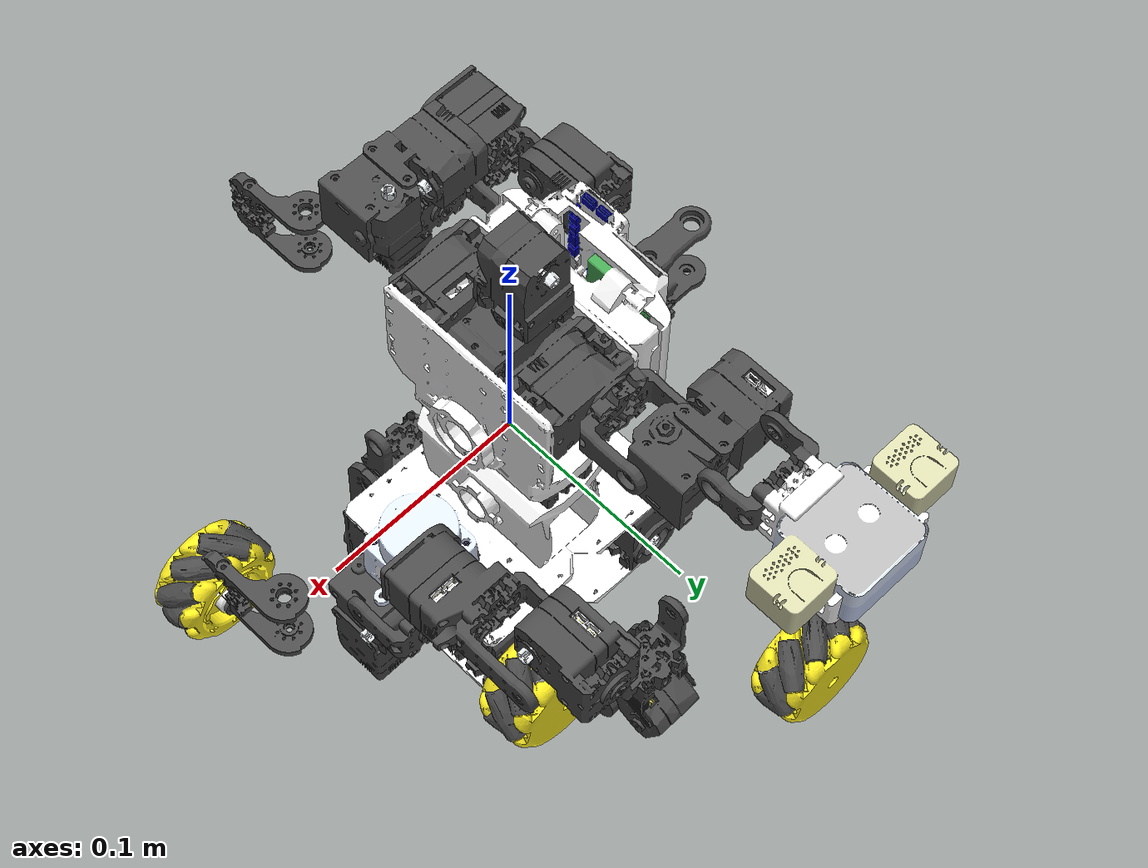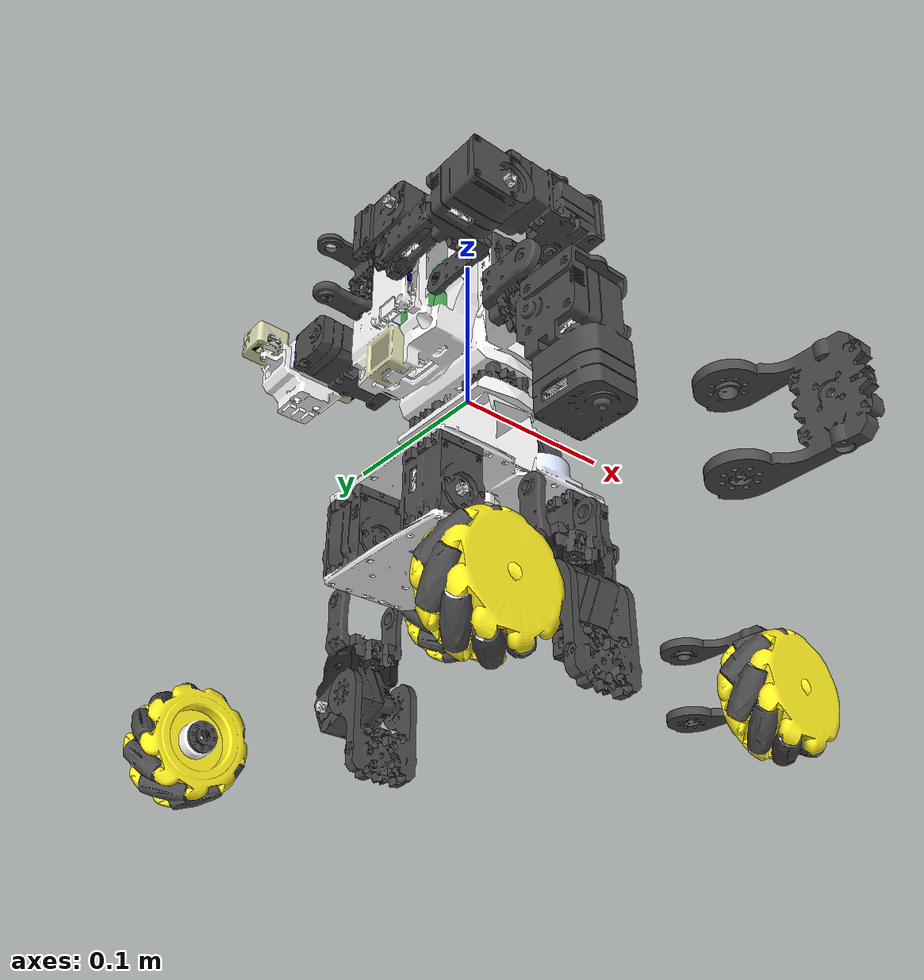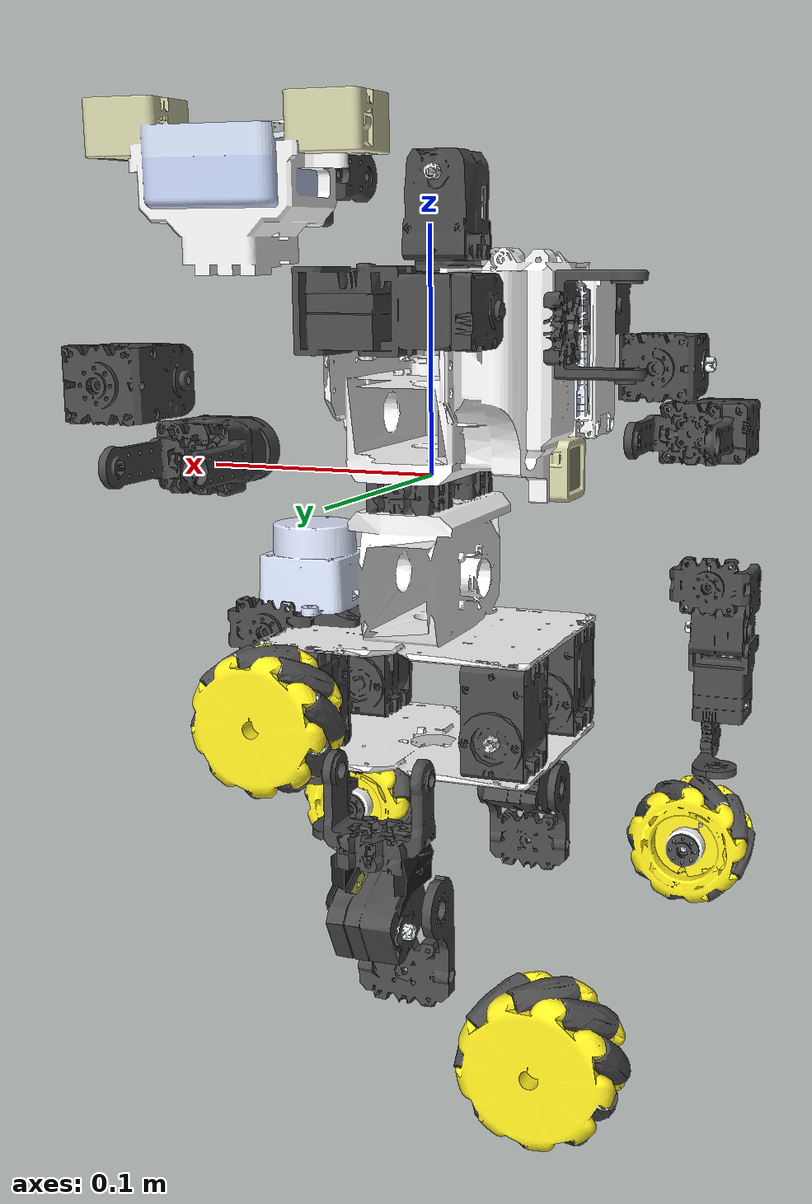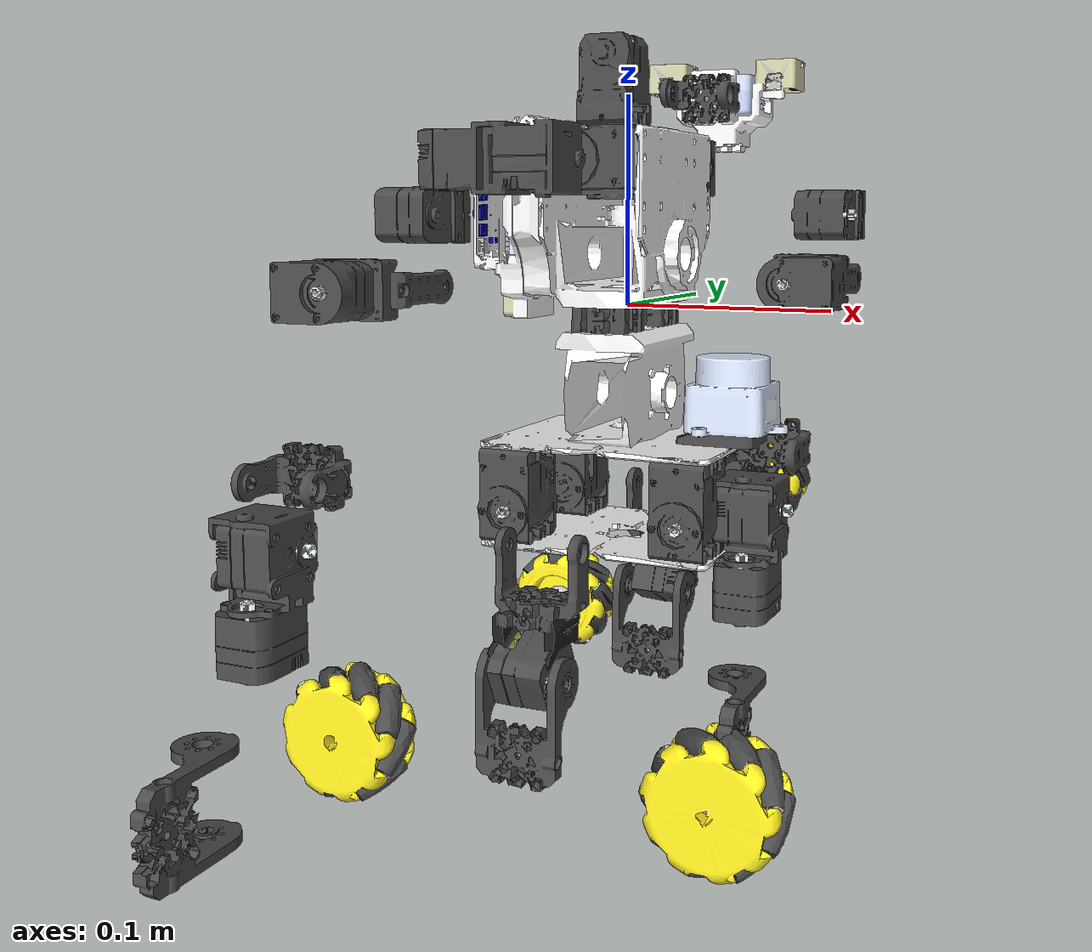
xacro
<?xml version='1.0' encoding='UTF-8'?>
<robot xmlns:xacro="http://www.ros.org/wiki/xacro" xmlns:drake="http://drake.mit.edu" name="jedy">
  <!-- true = keep the gz_ros2_control block below (upstream behaviour).
       false = emit kinematics only, for a caller that adds its own. -->
  <xacro:arg name="gz_control" default="true"/>
  <!-- Head camera in Gazebo: wide | d405 (see the rgbd_camera sensor). -->
  <xacro:arg name="camera_model" default="wide"/>
  <xacro:arg name="camera_rate" default="5"/>

  <link name="base_link"/>
  <link name="real_base_link">
    <inertial>
      <origin xyz="0.00124 1.38911e-10 0.02081" rpy="0.0 -0.0 0.0"/>
      <mass value="0.671312"/>
      <inertia ixx="0.001849" ixy="-8.30713e-06" ixz="-1.71308e-06" iyy="0.002122" iyz="1.45167e-06" izz="0.003179"/>
    </inertial>
    <visual>
      <geometry>
        <mesh filename="package://jedy_description/meshes/cad/base_link.dae"/>
      </geometry>
      <origin xyz="0 -0.127 -4.66497046e-07" rpy="-0.785398163 -1.57079113 -0.785398163"/>
    </visual>
    <collision>
      <geometry>
        <mesh filename="package://jedy_description/meshes/gz/base_link.stl"/>
      </geometry>
      <origin xyz="0.0 0.0 0.0" rpy="0.0 -0.0 0.0"/>
    </collision>
  </link>
  <link name="base_laser"/>
  <link name="rarm_link0">
    <inertial>
      <origin xyz="0.000907404 -0.0150045 -1.18469e-05" rpy="0 0 0"/>
      <mass value="0.00775312250160503"/>
      <inertia ixx="0.0001" ixy="-3.2627e-22" ixz="1.73727e-23" iyy="0.0001" iyz="2.47279e-21" izz="0.0001"/>
    </inertial>
    <visual>
      <geometry>
        <mesh filename="package://jedy_description/meshes/cad/rarm_link0.dae"/>
      </geometry>
      <origin xyz="0 0 0" rpy="0 0 0"/>
    </visual>
    <collision>
      <geometry>
        <mesh filename="package://jedy_description/meshes/gz/rarm_link0.stl"/>
      </geometry>
      <origin xyz="0.0 0.0 0.0" rpy="0.0 -0.0 0.0"/>
    </collision>
  </link>
  <link name="rarm_link1">
    <inertial>
      <origin xyz="-0.014701 -0.00805279 -0.00121579" rpy="0 0 0"/>
      <mass value="0.0488819579417231"/>
      <inertia ixx="0.0001" ixy="1.89779e-22" ixz="-2.09668e-23" iyy="0.0001" iyz="-4.13098e-21" izz="0.0001"/>
    </inertial>
    <visual>
      <geometry>
        <mesh filename="package://jedy_description/meshes/cad/rarm_link1.dae"/>
      </geometry>
      <origin xyz="0 0 0" rpy="0 0 0"/>
    </visual>
    <collision>
      <geometry>
        <mesh filename="package://jedy_description/meshes/gz/rarm_link1.stl"/>
      </geometry>
      <origin xyz="0.0 0.0 0.0" rpy="0.0 -0.0 0.0"/>
    </collision>
  </link>
  <link name="rarm_link2">
    <inertial>
      <origin xyz="-4.04746e-06 -0.000248405 -0.0194926" rpy="0 0 0"/>
      <mass value="0.0267722516782373"/>
      <inertia ixx="0.0001" ixy="2.13304e-24" ixz="9.06837e-23" iyy="0.0001" iyz="2.2843e-20" izz="0.0001"/>
    </inertial>
    <visual>
      <geometry>
        <mesh filename="package://jedy_description/meshes/cad/rarm_link2.dae"/>
      </geometry>
      <origin xyz="0 0 0" rpy="0 0 0"/>
    </visual>
    <collision>
      <geometry>
        <mesh filename="package://jedy_description/meshes/gz/rarm_link2.stl"/>
      </geometry>
      <origin xyz="0.0 0.0 0.0" rpy="0.0 -0.0 0.0"/>
    </collision>
  </link>
  <link name="rarm_link3">
    <inertial>
      <origin xyz="1.8231e-05 -0.00300069 -0.0367531" rpy="0 0 0"/>
      <mass value="0.0356190541582585"/>
      <inertia ixx="0.0001" ixy="-2.59258e-23" ixz="-4.61396e-23" iyy="0.0001" iyz="-1.10221e-20" izz="0.0001"/>
    </inertial>
    <visual>
      <geometry>
        <mesh filename="package://jedy_description/meshes/cad/rarm_link3.dae"/>
      </geometry>
      <origin xyz="0 0 0" rpy="0 0 0"/>
    </visual>
    <collision>
      <geometry>
        <mesh filename="package://jedy_description/meshes/gz/rarm_link3.stl"/>
      </geometry>
      <origin xyz="0.0 0.0 0.0" rpy="0.0 -0.0 0.0"/>
    </collision>
  </link>
  <link name="rarm_link4">
    <inertial>
      <origin xyz="4.78557e-06 2.40059e-06 -0.0139743" rpy="0 0 0"/>
      <mass value="0.00736377671410321"/>
      <inertia ixx="0.0001" ixy="2.14788e-23" ixz="4.47004e-23" iyy="0.0001" iyz="1.03761e-20" izz="0.0001"/>
    </inertial>
    <visual>
      <geometry>
        <mesh filename="package://jedy_description/meshes/cad/rarm_link4.dae"/>
      </geometry>
      <origin xyz="0 0 0" rpy="0 0 0"/>
    </visual>
    <collision>
      <geometry>
        <mesh filename="package://jedy_description/meshes/gz/rarm_link4.stl"/>
      </geometry>
      <origin xyz="0.0 0.0 0.0" rpy="0.0 -0.0 0.0"/>
    </collision>
  </link>
  <link name="rarm_link5">
    <inertial>
      <origin xyz="-0.0146028 -0.0012796 -0.0108028" rpy="0 0 0"/>
      <mass value="0.0488819579417229"/>
      <inertia ixx="0.0001" ixy="-2.65614e-22" ixz="-1.728e-21" iyy="0.0001" iyz="3.8154e-20" izz="0.0001"/>
    </inertial>
    <visual>
      <geometry>
        <mesh filename="package://jedy_description/meshes/cad/rarm_link5.dae"/>
      </geometry>
      <origin xyz="0 0 0" rpy="0 0 0"/>
    </visual>
    <collision>
      <geometry>
        <mesh filename="package://jedy_description/meshes/gz/rarm_link5.stl"/>
      </geometry>
      <origin xyz="0.0 0.0 0.0" rpy="0.0 -0.0 0.0"/>
    </collision>
  </link>
  <link name="rarm_link6">
    <inertial>
      <origin xyz="5.17439e-05 -0.00254394 -0.0319991" rpy="0 0 0"/>
      <mass value="0.0333926389608614"/>
      <inertia ixx="0.0001" ixy="-1.43346e-22" ixz="6.76379e-22" iyy="0.0001" iyz="1.21944e-20" izz="0.0001"/>
    </inertial>
    <visual>
      <geometry>
        <mesh filename="package://jedy_description/meshes/cad/rarm_link6.dae"/>
      </geometry>
      <origin xyz="0 0 0" rpy="0 0 0"/>
    </visual>
    <collision>
      <geometry>
        <mesh filename="package://jedy_description/meshes/gz/rarm_link6.stl"/>
      </geometry>
      <origin xyz="0.0 0.0 0.0" rpy="0.0 -0.0 0.0"/>
    </collision>
  </link>
  <link name="rarm_link7">
    <inertial>
      <origin xyz="-3.27995e-06 -0.00355774 -0.0123677" rpy="0 0 0"/>
      <mass value="0.00895541725275716"/>
      <inertia ixx="0.0001" ixy="1.33878e-23" ixz="2.54155e-23" iyy="0.0001" iyz="-2.04654e-20" izz="0.0001"/>
    </inertial>
    <visual>
      <geometry>
        <mesh filename="package://jedy_description/meshes/cad/rarm_link7.dae"/>
      </geometry>
      <origin xyz="0 0 0" rpy="0 0 0"/>
    </visual>
    <collision>
      <geometry>
        <mesh filename="package://jedy_description/meshes/gz/rarm_link7.stl"/>
      </geometry>
      <origin xyz="0.0 0.0 0.0" rpy="0.0 -0.0 0.0"/>
    </collision>
  </link>
  <link name="rarm_link8">
    <inertial>
      <origin xyz="4.14241e-06 0.00355594 -0.012369" rpy="0 0 0"/>
      <mass value="0.00895541725275716"/>
      <inertia ixx="0.0001" ixy="1.98849e-23" ixz="3.53306e-24" iyy="0.0001" iyz="-1.88277e-21" izz="0.0001"/>
    </inertial>
    <visual>
      <geometry>
        <mesh filename="package://jedy_description/meshes/cad/rarm_link8.dae"/>
      </geometry>
      <origin xyz="0 0 0" rpy="0 0 0"/>
    </visual>
    <collision>
      <geometry>
        <mesh filename="package://jedy_description/meshes/gz/rarm_link8.stl"/>
      </geometry>
      <origin xyz="0.0 0.0 0.0" rpy="0.0 -0.0 0.0"/>
    </collision>
  </link>
  <link name="larm_link0">
    <inertial>
      <origin xyz="0.000903325 -0.0150056 -7.14391e-06" rpy="0 0 0"/>
      <mass value="0.00775312250160503"/>
      <inertia ixx="0.0001" ixy="2.90155e-22" ixz="-8.00024e-23" iyy="0.0001" iyz="4.37189e-21" izz="0.0001"/>
    </inertial>
    <visual>
      <geometry>
        <mesh filename="package://jedy_description/meshes/cad/larm_link0.dae"/>
      </geometry>
      <origin xyz="0 0 0" rpy="1.19755372e-12 0 0"/>
    </visual>
    <collision>
      <geometry>
        <mesh filename="package://jedy_description/meshes/gz/larm_link0.stl"/>
      </geometry>
      <origin xyz="0.0 0.0 0.0" rpy="0.0 -0.0 0.0"/>
    </collision>
  </link>
  <link name="larm_link1">
    <inertial>
      <origin xyz="-0.0147383 0.0080559 -0.000263276" rpy="0 0 0"/>
      <mass value="0.0488819579417233"/>
      <inertia ixx="0.0001" ixy="-5.28497e-22" ixz="-9.24276e-24" iyy="0.0001" iyz="-3.7798e-21" izz="0.0001"/>
    </inertial>
    <visual>
      <geometry>
        <mesh filename="package://jedy_description/meshes/cad/larm_link1.dae"/>
      </geometry>
      <origin xyz="0 0 0" rpy="1.19755372e-12 0 0"/>
    </visual>
    <collision>
      <geometry>
        <mesh filename="package://jedy_description/meshes/gz/larm_link1.stl"/>
      </geometry>
      <origin xyz="0.0 0.0 0.0" rpy="0.0 -0.0 0.0"/>
    </collision>
  </link>
  <link name="larm_link2">
    <inertial>
      <origin xyz="3.36407e-06 0.000261084 -0.019518" rpy="0 0 0"/>
      <mass value="0.0267722516782377"/>
      <inertia ixx="0.0001" ixy="-5.49e-23" ixz="1.00548e-22" iyy="0.0001" iyz="-2.26189e-20" izz="0.0001"/>
    </inertial>
    <visual>
      <geometry>
        <mesh filename="package://jedy_description/meshes/cad/larm_link2.dae"/>
      </geometry>
      <origin xyz="0 0 0" rpy="1.19755372e-12 0 0"/>
    </visual>
    <collision>
      <geometry>
        <mesh filename="package://jedy_description/meshes/gz/larm_link2.stl"/>
      </geometry>
      <origin xyz="0.0 0.0 0.0" rpy="0.0 -0.0 0.0"/>
    </collision>
  </link>
  <link name="larm_link3">
    <inertial>
      <origin xyz="9.0346e-07 0.00299824 -0.036745" rpy="0 0 0"/>
      <mass value="0.035619054158259"/>
      <inertia ixx="0.0001" ixy="-1.41225e-23" ixz="-4.44954e-24" iyy="0.0001" iyz="-1.30634e-21" izz="0.0001"/>
    </inertial>
    <visual>
      <geometry>
        <mesh filename="package://jedy_description/meshes/cad/larm_link3.dae"/>
      </geometry>
      <origin xyz="0 0 0" rpy="1.19755372e-12 0 0"/>
    </visual>
    <collision>
      <geometry>
        <mesh filename="package://jedy_description/meshes/gz/larm_link3.stl"/>
      </geometry>
      <origin xyz="0.0 0.0 0.0" rpy="0.0 -0.0 0.0"/>
    </collision>
  </link>
  <link name="larm_link4">
    <inertial>
      <origin xyz="-6.96878e-06 -3.26504e-06 -0.0139764" rpy="0 0 0"/>
      <mass value="0.0073637767141032"/>
      <inertia ixx="0.0001" ixy="4.3742e-25" ixz="-1.00043e-22" iyy="0.0001" iyz="6.06674e-21" izz="0.0001"/>
    </inertial>
    <visual>
      <geometry>
        <mesh filename="package://jedy_description/meshes/cad/larm_link4.dae"/>
      </geometry>
      <origin xyz="0 0 0" rpy="1.19755372e-12 0 0"/>
    </visual>
    <collision>
      <geometry>
        <mesh filename="package://jedy_description/meshes/gz/larm_link4.stl"/>
      </geometry>
      <origin xyz="0.0 0.0 0.0" rpy="0.0 -0.0 0.0"/>
    </collision>
  </link>
  <link name="larm_link5">
    <inertial>
      <origin xyz="-0.0146176 0.000217291 -0.0107976" rpy="0 0 0"/>
      <mass value="0.0488819579417233"/>
      <inertia ixx="0.0001" ixy="6.22427e-22" ixz="3.2167e-22" iyy="0.0001" iyz="-7.24049e-21" izz="0.0001"/>
    </inertial>
    <visual>
      <geometry>
        <mesh filename="package://jedy_description/meshes/cad/larm_link5.dae"/>
      </geometry>
      <origin xyz="0 0 0" rpy="1.19755372e-12 0 0"/>
    </visual>
    <collision>
      <geometry>
        <mesh filename="package://jedy_description/meshes/gz/larm_link5.stl"/>
      </geometry>
      <origin xyz="0.0 0.0 0.0" rpy="0.0 -0.0 0.0"/>
    </collision>
  </link>
  <link name="larm_link6">
    <inertial>
      <origin xyz="0.000458608 0.00255961 -0.0320331" rpy="0 0 0"/>
      <mass value="0.0333926389608612"/>
      <inertia ixx="0.0001" ixy="-3.39011e-22" ixz="1.4423e-22" iyy="0.0001" iyz="1.95479e-20" izz="0.0001"/>
    </inertial>
    <visual>
      <geometry>
        <mesh filename="package://jedy_description/meshes/cad/larm_link6.dae"/>
      </geometry>
      <origin xyz="0 0 0" rpy="1.19755372e-12 0 0"/>
    </visual>
    <collision>
      <geometry>
        <mesh filename="package://jedy_description/meshes/gz/larm_link6.stl"/>
      </geometry>
      <origin xyz="0.0 0.0 0.0" rpy="0.0 -0.0 0.0"/>
    </collision>
  </link>
  <link name="larm_link7">
    <inertial>
      <origin xyz="3.17888e-06 0.00355777 -0.0123677" rpy="0 0 0"/>
      <mass value="0.00895541725275716"/>
      <inertia ixx="0.0001" ixy="-1.35006e-23" ixz="-1.55343e-23" iyy="0.0001" iyz="1.16422e-20" izz="0.0001"/>
    </inertial>
    <visual>
      <geometry>
        <mesh filename="package://jedy_description/meshes/cad/larm_link7.dae"/>
      </geometry>
      <origin xyz="0 0 0" rpy="1.19755372e-12 0 0"/>
    </visual>
    <collision>
      <geometry>
        <mesh filename="package://jedy_description/meshes/gz/larm_link7.stl"/>
      </geometry>
      <origin xyz="0.0 0.0 0.0" rpy="0.0 -0.0 0.0"/>
    </collision>
  </link>
  <link name="larm_link8">
    <inertial>
      <origin xyz="-4.21436e-06 -0.00355594 -0.0123692" rpy="0 0 0"/>
      <mass value="0.00895541725275716"/>
      <inertia ixx="0.0001" ixy="-1.33224e-24" ixz="-7.73301e-24" iyy="0.0001" iyz="-2.60439e-20" izz="0.0001"/>
    </inertial>
    <visual>
      <geometry>
        <mesh filename="package://jedy_description/meshes/cad/larm_link8.dae"/>
      </geometry>
      <origin xyz="0 0 0" rpy="1.19755372e-12 0 0"/>
    </visual>
    <collision>
      <geometry>
        <mesh filename="package://jedy_description/meshes/gz/larm_link8.stl"/>
      </geometry>
      <origin xyz="0.0 0.0 0.0" rpy="0.0 -0.0 0.0"/>
    </collision>
  </link>
  <link name="head_link0">
    <inertial>
      <origin xyz="-1.73472e-18 1.22056e-18 0.023093" rpy="0.0 -0.0 0.0"/>
      <mass value="0.037398"/>
      <inertia ixx="8.69139e-05" ixy="-8.96373e-22" ixz="8.61164e-09" iyy="9.09972e-05" iyz="-5.25778e-09" izz="2.5436e-05"/>
    </inertial>
    <visual>
      <geometry>
        <mesh filename="package://jedy_description/meshes/cad/head_link0.dae"/>
      </geometry>
      <origin xyz="0 0 0" rpy="0 0 0"/>
    </visual>
    <collision>
      <geometry>
        <mesh filename="package://jedy_description/meshes/gz/head_link0.stl"/>
      </geometry>
      <origin xyz="0.0 0.0 0.0" rpy="0.0 -0.0 0.0"/>
    </collision>
  </link>
  <link name="head_link1">
    <inertial>
      <origin xyz="-0.000263924 4.07576e-05 0.0395543" rpy="0 0 0"/>
      <mass value="0.093045"/>
      <inertia ixx="0.0001" ixy="-1.24251e-22" ixz="1.13596e-21" iyy="0.0001" iyz="2.26317e-22" izz="0.0001"/>
    </inertial>
    <visual>
      <geometry>
        <mesh filename="package://jedy_description/meshes/cad/head_link1.dae"/>
      </geometry>
      <origin xyz="0 0 0" rpy="0 0 0"/>
    </visual>
    <collision>
      <geometry>
        <mesh filename="package://jedy_description/meshes/gz/head_link1.stl"/>
      </geometry>
      <origin xyz="0.0 0.0 0.0" rpy="0.0 -0.0 0.0"/>
    </collision>
  </link>
  <link name="front_right_wheel_link">
    <inertial>
      <origin xyz="-6.93889e-18 0.016915 0.0" rpy="0.0 -0.0 0.0"/>
      <mass value="0.095024"/>
      <inertia ixx="0.000174" ixy="5.9261e-22" ixz="5.04911e-20" iyy="0.000173" iyz="-1.9762e-20" izz="0.000262"/>
    </inertial>
    <visual>
      <geometry>
        <mesh filename="package://jedy_description/meshes/cad/front_right_wheel_link.dae"/>
      </geometry>
      <origin xyz="0 0 0" rpy="0 0 0"/>
    </visual>
    <collision>
      <geometry>
        <cylinder length="0.0305" radius="0.0252501"/>
      </geometry>
      <origin xyz="-0.01525 0 0" rpy="-3.14159265 1.57079633 -3.14159265"/>
    </collision>
  </link>
  <link name="front_left_wheel_link">
    <inertial>
      <origin xyz="-6.93889e-18 0.016915 0.0" rpy="0.0 -0.0 0.0"/>
      <mass value="0.095024"/>
      <inertia ixx="0.000174" ixy="5.9261e-22" ixz="5.04911e-20" iyy="0.000173" iyz="-1.9762e-20" izz="0.000262"/>
    </inertial>
    <visual>
      <geometry>
        <mesh filename="package://jedy_description/meshes/cad/front_left_wheel_link.dae"/>
      </geometry>
      <origin xyz="0 0 0" rpy="0 0 0"/>
    </visual>
    <collision>
      <geometry>
        <cylinder length="0.0305" radius="0.0252501"/>
      </geometry>
      <origin xyz="0.01525 0 0" rpy="-3.14159265 1.57079633 -3.14159265"/>
    </collision>
  </link>
  <link name="rear_right_wheel_link">
    <inertial>
      <origin xyz="-6.93889e-18 0.016915 0.0" rpy="0.0 -0.0 0.0"/>
      <mass value="0.095024"/>
      <inertia ixx="0.000174" ixy="5.9261e-22" ixz="5.04911e-20" iyy="0.000173" iyz="-1.9762e-20" izz="0.000262"/>
    </inertial>
    <visual>
      <geometry>
        <mesh filename="package://jedy_description/meshes/cad/rear_right_wheel_link.dae"/>
      </geometry>
      <origin xyz="0 0 0" rpy="0 0 0"/>
    </visual>
    <collision>
      <geometry>
        <cylinder length="0.0305" radius="0.0252501"/>
      </geometry>
      <origin xyz="-0.01525 0 0" rpy="-3.14159265 1.57079633 -3.14159265"/>
    </collision>
  </link>
  <link name="rear_left_wheel_link">
    <inertial>
      <origin xyz="-6.93889e-18 0.016915 0.0" rpy="0.0 -0.0 0.0"/>
      <mass value="0.095024"/>
      <inertia ixx="0.000174" ixy="5.9261e-22" ixz="5.04911e-20" iyy="0.000173" iyz="-1.9762e-20" izz="0.000262"/>
    </inertial>
    <visual>
      <geometry>
        <mesh filename="package://jedy_description/meshes/cad/rear_left_wheel_link.dae"/>
      </geometry>
      <origin xyz="0 0 0" rpy="0 0 0"/>
    </visual>
    <collision>
      <geometry>
        <cylinder length="0.0305" radius="0.0252501"/>
      </geometry>
      <origin xyz="0.01525 0 0" rpy="-3.14159265 1.57079633 -3.14159265"/>
    </collision>
  </link>
  <link name="camera_link">
    <inertial>
      <origin xyz="0.0 0.0 0.0" rpy="0.0 -0.0 0.0"/>
      <mass value="0.0"/>
      <inertia ixx="0.003881243" ixy="0.0" ixz="0.0" iyy="0.00049894" iyz="0.0" izz="0.003879257"/>
    </inertial>
  </link>
  <link name="camera_color_frame"/>
  <link name="camera_color_optical_frame"/>
  <link name="camera_depth_frame"/>
  <link name="camera_depth_optical_frame"/>
  <joint name="pseudo_base_joint" type="fixed">
    <limit effort="0.0" velocity="0.0"/>
    <parent link="base_link"/>
    <child link="real_base_link"/>
    <axis xyz="0. 0. 0."/>
    <origin xyz="0.0 0.0 0.0" rpy="1.5707926535897931 -0.0 1.5707926535897931"/>
  </joint>
  <joint name="base_laser_joint" type="fixed">
    <limit effort="0.0" velocity="0.0"/>
    <parent link="base_link"/>
    <child link="base_laser"/>
    <axis xyz="1. 0. 0."/>
    <origin xyz="0.1 0.0 -0.0" rpy="0.0 -0.0 0.0"/>
  </joint>
  <joint name="rarm_joint0" type="revolute">
    <limit effort="0.48" velocity="6.55" lower="-2.35" upper="2.35"/>
    <parent link="real_base_link"/>
    <child link="rarm_link0"/>
    <axis xyz="0. 1. 0."/>
    <origin xyz="-0.0505 0.0685 -0.0075" rpy="-1.5707926535897931 -1.5707926535897931 -0.001592653589793114"/>
    <dynamics damping="0.001" friction="0.13"/>
  </joint>
  <joint name="rarm_joint1" type="revolute">
    <limit effort="0.48" velocity="6.55" lower="-2.35" upper="0.52"/>
    <parent link="rarm_link0"/>
    <child link="rarm_link1"/>
    <axis xyz="1. 0. 0."/>
    <origin xyz="0.0 -0.028 0.0" rpy="0.0 -0.0 0.0"/>
    <dynamics damping="0.001" friction="0.13"/>
  </joint>
  <joint name="rarm_joint2" type="revolute">
    <limit effort="0.48" velocity="6.55" lower="-2.35" upper="2.35"/>
    <parent link="rarm_link1"/>
    <child link="rarm_link2"/>
    <axis xyz="0. 0. 1."/>
    <origin xyz="0.0 0.0 -0.0175" rpy="0.0 -0.0 0.0"/>
    <dynamics damping="0.001" friction="0.13"/>
  </joint>
  <joint name="rarm_joint3" type="revolute">
    <limit effort="0.48" velocity="6.55" lower="-2.35" upper="2.35"/>
    <parent link="rarm_link2"/>
    <child link="rarm_link3"/>
    <axis xyz="0. 1. 0."/>
    <origin xyz="0.0 0.0 -0.033" rpy="0.0 -0.0 0.0"/>
    <dynamics damping="0.001" friction="0.13"/>
  </joint>
  <joint name="rarm_joint4" type="revolute">
    <limit effort="0.48" velocity="6.55" lower="-2.35" upper="2.35"/>
    <parent link="rarm_link3"/>
    <child link="rarm_link4"/>
    <axis xyz="0. 0. 1."/>
    <origin xyz="-0.0024791 0.0006946 -0.075" rpy="0.0 -0.0 0.0"/>
    <dynamics damping="0.001" friction="0.13"/>
  </joint>
  <joint name="rarm_joint5" type="revolute">
    <limit effort="0.48" velocity="6.55" lower="-1.57" upper="1.05"/>
    <parent link="rarm_link4"/>
    <child link="rarm_link5"/>
    <axis xyz="0. 1. 0."/>
    <origin xyz="0.0 0.0 -0.026" rpy="0.0 -0.0 0.0"/>
    <dynamics damping="0.001" friction="0.13"/>
  </joint>
  <joint name="rarm_joint6" type="revolute">
    <limit effort="0.48" velocity="6.55" lower="-1.57" upper="1.57"/>
    <parent link="rarm_link5"/>
    <child link="rarm_link6"/>
    <axis xyz="1. 0. 0."/>
    <origin xyz="0.0 0.0 -0.021" rpy="0.0 -0.0 0.0"/>
    <dynamics damping="0.001" friction="0.13"/>
  </joint>
  <joint name="rarm_gripper_joint" type="revolute">
    <limit effort="0.48" velocity="6.55" lower="-0.5" upper="1.57"/>
    <parent link="rarm_link6"/>
    <child link="rarm_link7"/>
    <axis xyz="-1. 0. 0."/>
    <origin xyz="0.0 -0.011737 -0.056303" rpy="0.0 -0.0 0.0"/>
    <dynamics damping="0.001" friction="0.13"/>
  </joint>
  <joint name="rarm_mimic_gripper_joint" type="revolute">
    <limit effort="0.48" velocity="6.55" lower="-1.57" upper="0.5"/>
    <mimic joint="rarm_gripper_joint" multiplier="-1.0" offset="0.0"/>
    <parent link="rarm_link6"/>
    <child link="rarm_link8"/>
    <axis xyz="-1. 0. 0."/>
    <origin xyz="0.0 0.011741 -0.056303" rpy="0.0 -0.0 0.0"/>
  </joint>
  <joint name="larm_joint0" type="revolute">
    <limit effort="0.48" velocity="6.55" lower="-2.35" upper="2.35"/>
    <parent link="real_base_link"/>
    <child link="larm_link0"/>
    <axis xyz="0. 1. 0."/>
    <origin xyz="0.0505 0.0685 -0.0075" rpy="-1.5707926535897931 -1.5707926535897931 3.141592653589793"/>
    <dynamics damping="0.001" friction="0.13"/>
  </joint>
  <joint name="larm_joint1" type="revolute">
    <limit effort="0.48" velocity="6.55" lower="-0.56" upper="2.35"/>
    <parent link="larm_link0"/>
    <child link="larm_link1"/>
    <axis xyz="1. 0. 0."/>
    <origin xyz="0.0 -0.028 0.0" rpy="3.1415853071795867 -0.0 0.0"/>
    <dynamics damping="0.001" friction="0.13"/>
  </joint>
  <joint name="larm_joint2" type="revolute">
    <limit effort="0.48" velocity="6.55" lower="-2.35" upper="2.35"/>
    <parent link="larm_link1"/>
    <child link="larm_link2"/>
    <axis xyz="0. 0. 1."/>
    <origin xyz="0.0 0.0 -0.0175" rpy="0.0 -0.0 0.0"/>
    <dynamics damping="0.001" friction="0.13"/>
  </joint>
  <joint name="larm_joint3" type="revolute">
    <limit effort="0.48" velocity="6.55" lower="-2.35" upper="2.35"/>
    <parent link="larm_link2"/>
    <child link="larm_link3"/>
    <axis xyz="0. 1. 0."/>
    <origin xyz="0.0 0.0 -0.033" rpy="0.0 -0.0 0.0"/>
    <dynamics damping="0.001" friction="0.13"/>
  </joint>
  <joint name="larm_joint4" type="revolute">
    <limit effort="0.48" velocity="6.55" lower="-2.35" upper="2.35"/>
    <parent link="larm_link3"/>
    <child link="larm_link4"/>
    <axis xyz="0. 0. 1."/>
    <origin xyz="-0.0024791 -0.0006946 -0.075" rpy="0.0 -0.0 0.0"/>
    <dynamics damping="0.001" friction="0.13"/>
  </joint>
  <joint name="larm_joint5" type="revolute">
    <limit effort="0.48" velocity="6.55" lower="-1.57" upper="1.05"/>
    <parent link="larm_link4"/>
    <child link="larm_link5"/>
    <axis xyz="0. 1. 0."/>
    <origin xyz="0.0 0.0 -0.026" rpy="0.0 -0.0 0.0"/>
    <dynamics damping="0.001" friction="0.13"/>
  </joint>
  <joint name="larm_joint6" type="revolute">
    <limit effort="0.48" velocity="6.55" lower="-1.57" upper="1.57"/>
    <parent link="larm_link5"/>
    <child link="larm_link6"/>
    <axis xyz="1. 0. 0."/>
    <origin xyz="0.0 0.0 -0.021" rpy="0.0 -0.0 0.0"/>
    <dynamics damping="0.001" friction="0.13"/>
  </joint>
  <joint name="larm_gripper_joint" type="revolute">
    <limit effort="0.48" velocity="6.55" lower="-0.5" upper="1.57"/>
    <parent link="larm_link6"/>
    <child link="larm_link7"/>
    <axis xyz="1. 0. 0."/>
    <origin xyz="0.0 0.011737 -0.056303" rpy="0.0 -0.0 0.0"/>
    <dynamics damping="0.001" friction="0.13"/>
  </joint>
  <joint name="larm_mimic_gripper_joint" type="revolute">
    <limit effort="0.48" velocity="6.55" lower="-1.57" upper="0.5"/>
    <mimic joint="larm_gripper_joint" multiplier="-1.0" offset="0.0"/>
    <parent link="larm_link6"/>
    <child link="larm_link8"/>
    <axis xyz="1. 0. 0."/>
    <origin xyz="0.0 -0.011741 -0.056303" rpy="0.0 -0.0 0.0"/>
  </joint>
  <joint name="head_joint0" type="revolute">
    <limit effort="0.48" velocity="6.55" lower="-2.35" upper="2.35"/>
    <parent link="real_base_link"/>
    <child link="head_link0"/>
    <axis xyz="0. 0. 1."/>
    <origin xyz="0.0 0.086 -0.0075" rpy="-3.141592653589793 -1.5707926535897931 1.5707926535897931"/>
    <dynamics damping="0.001" friction="0.13"/>
  </joint>
  <joint name="head_joint1" type="revolute">
    <limit effort="0.48" velocity="6.55" lower="-1.57" upper="1.57"/>
    <parent link="head_link0"/>
    <child link="head_link1"/>
    <axis xyz="0. 1. 0."/>
    <origin xyz="0.0 0.0 0.033" rpy="0.0 -0.0 0.0"/>
    <dynamics damping="0.001" friction="0.13"/>
  </joint>
  <joint name="front_right_wheel_joint" type="continuous">
    <limit effort="100.0" velocity="6.55"/>
    <parent link="real_base_link"/>
    <child link="front_right_wheel_link"/>
    <axis xyz="1. 0. 0."/>
    <origin xyz="-0.0505 -0.091 0.0435" rpy="-3.58979313e-09 -3.58979313e-09 0"/>
  </joint>
  <joint name="front_left_wheel_joint" type="continuous">
    <limit effort="100.0" velocity="6.55"/>
    <parent link="real_base_link"/>
    <child link="front_left_wheel_link"/>
    <axis xyz="1. 0. 0."/>
    <origin xyz="0.0505 -0.091 0.0435" rpy="-3.58979313e-09 -3.58979313e-09 0"/>
  </joint>
  <joint name="rear_right_wheel_joint" type="continuous">
    <limit effort="100.0" velocity="6.55"/>
    <parent link="real_base_link"/>
    <child link="rear_right_wheel_link"/>
    <axis xyz="1. 0. 0."/>
    <origin xyz="-0.0505 -0.091 -0.0435" rpy="-3.58979313e-09 -3.58979313e-09 0"/>
  </joint>
  <joint name="rear_left_wheel_joint" type="continuous">
    <limit effort="100.0" velocity="6.55"/>
    <parent link="real_base_link"/>
    <child link="rear_left_wheel_link"/>
    <axis xyz="1. 0. 0."/>
    <origin xyz="0.0505 -0.091 -0.0435" rpy="-3.58979313e-09 -3.58979313e-09 0"/>
  </joint>
  <joint name="camera_joint" type="fixed">
    <limit effort="0.0" velocity="0.0"/>
    <parent link="head_link1"/>
    <child link="camera_link"/>
    <axis xyz="1. 0. 0."/>
    <origin xyz="0.02 0.01 0.06" rpy="0.0 -0.0 0.0"/>
  </joint>
  <joint name="camera_color_frame_joint" type="fixed">
    <limit effort="0.0" velocity="0.0"/>
    <parent link="camera_link"/>
    <child link="camera_color_frame"/>
    <axis xyz="1. 0. 0."/>
    <origin xyz="0.0 0.0 0.0" rpy="0.0 -0.0 0.0"/>
  </joint>
  <joint name="camera_color_optical_frame_joint" type="fixed">
    <limit effort="0.0" velocity="0.0"/>
    <parent link="camera_color_frame"/>
    <child link="camera_color_optical_frame"/>
    <axis xyz="1. 0. 0."/>
    <origin xyz="0.0 0.0 0.0" rpy="-1.57 -0.0 -1.57"/>
  </joint>
  <joint name="camera_depth_frame_joint" type="fixed">
    <limit effort="0.0" velocity="0.0"/>
    <parent link="camera_link"/>
    <child link="camera_depth_frame"/>
    <axis xyz="1. 0. 0."/>
    <origin xyz="0.0 0.0 0.0" rpy="0.0 -0.0 0.0"/>
  </joint>
  <joint name="camera_depth_optical_frame_joint" type="fixed">
    <limit effort="0.0" velocity="0.0"/>
    <parent link="camera_depth_frame"/>
    <child link="camera_depth_optical_frame"/>
    <axis xyz="1. 0. 0."/>
    <origin xyz="0.0 0.0 0.0" rpy="-1.57 -0.0 -1.57"/>
  </joint>
  <xacro:arg xmlns:xacro="http://www.ros.org/wiki/xacro" name="head_j0_init" default="0.0"/>
  <xacro:arg xmlns:xacro="http://www.ros.org/wiki/xacro" name="head_j1_init" default="0.0"/>
  <xacro:arg xmlns:xacro="http://www.ros.org/wiki/xacro" name="rarm_j0_init" default="0.0"/>
  <xacro:arg xmlns:xacro="http://www.ros.org/wiki/xacro" name="rarm_j1_init" default="0.0"/>
  <xacro:arg xmlns:xacro="http://www.ros.org/wiki/xacro" name="rarm_j2_init" default="0.0"/>
  <xacro:arg xmlns:xacro="http://www.ros.org/wiki/xacro" name="rarm_j3_init" default="0.0"/>
  <xacro:arg xmlns:xacro="http://www.ros.org/wiki/xacro" name="rarm_j4_init" default="0.0"/>
  <xacro:arg xmlns:xacro="http://www.ros.org/wiki/xacro" name="rarm_j5_init" default="0.0"/>
  <xacro:arg xmlns:xacro="http://www.ros.org/wiki/xacro" name="rarm_j6_init" default="0.0"/>
  <xacro:arg xmlns:xacro="http://www.ros.org/wiki/xacro" name="rarm_gripper_init" default="0.0"/>
  <xacro:arg xmlns:xacro="http://www.ros.org/wiki/xacro" name="larm_j0_init" default="0.0"/>
  <xacro:arg xmlns:xacro="http://www.ros.org/wiki/xacro" name="larm_j1_init" default="0.0"/>
  <xacro:arg xmlns:xacro="http://www.ros.org/wiki/xacro" name="larm_j2_init" default="0.0"/>
  <xacro:arg xmlns:xacro="http://www.ros.org/wiki/xacro" name="larm_j3_init" default="0.0"/>
  <xacro:arg xmlns:xacro="http://www.ros.org/wiki/xacro" name="larm_j4_init" default="0.0"/>
  <xacro:arg xmlns:xacro="http://www.ros.org/wiki/xacro" name="larm_j5_init" default="0.0"/>
  <xacro:arg xmlns:xacro="http://www.ros.org/wiki/xacro" name="larm_j6_init" default="0.0"/>
  <xacro:arg xmlns:xacro="http://www.ros.org/wiki/xacro" name="larm_gripper_init" default="0.0"/>
  <xacro:arg xmlns:xacro="http://www.ros.org/wiki/xacro" name="controllers_config" default=""/>
  <gazebo reference="real_base_link">
    <mu1>0.5</mu1>
    <mu2>0.5</mu2>
    <kp>100000</kp>
    <kd>1</kd>
    <gravity>true</gravity>
  </gazebo>
  <gazebo reference="rarm_joint0">
    <mu1>0.4</mu1>
    <mu2>0.4</mu2>
    <kp>100000</kp>
    <kd>1</kd>
    <self_collide>false</self_collide>
  </gazebo>
  <gazebo reference="rarm_joint1">
    <mu1>0.4</mu1>
    <mu2>0.4</mu2>
    <kp>100000</kp>
    <kd>1</kd>
  </gazebo>
  <gazebo reference="rarm_joint2">
    <mu1>0.4</mu1>
    <mu2>0.4</mu2>
    <kp>100000</kp>
    <kd>1</kd>
  </gazebo>
  <gazebo reference="rarm_joint3">
    <mu1>0.4</mu1>
    <mu2>0.4</mu2>
    <kp>100000</kp>
    <kd>1</kd>
  </gazebo>
  <gazebo reference="rarm_joint4">
    <mu1>0.4</mu1>
    <mu2>0.4</mu2>
    <kp>100000</kp>
    <kd>1</kd>
  </gazebo>
  <gazebo reference="rarm_joint5">
    <mu1>0.4</mu1>
    <mu2>0.4</mu2>
    <kp>100000</kp>
    <kd>1</kd>
  </gazebo>
  <gazebo reference="rarm_joint6">
    <mu1>0.4</mu1>
    <mu2>0.4</mu2>
    <kp>100000</kp>
    <kd>1</kd>
  </gazebo>
  <gazebo reference="rarm_gripper_joint">
    <mu1>0.4</mu1>
    <mu2>0.4</mu2>
    <kp>100000</kp>
    <kd>1</kd>
  </gazebo>
  <gazebo reference="rarm_mimic_gripper_joint">
    <mu1>0.4</mu1>
    <mu2>0.4</mu2>
    <kp>100000</kp>
    <kd>1</kd>
  </gazebo>
  <gazebo reference="larm_joint0">
    <mu1>0.4</mu1>
    <mu2>0.4</mu2>
    <kp>100000</kp>
    <kd>1</kd>
  </gazebo>
  <gazebo reference="larm_joint1">
    <mu1>0.4</mu1>
    <mu2>0.4</mu2>
    <kp>100000</kp>
    <kd>1</kd>
  </gazebo>
  <gazebo reference="larm_joint2">
    <mu1>0.4</mu1>
    <mu2>0.4</mu2>
    <kp>100000</kp>
    <kd>1</kd>
  </gazebo>
  <gazebo reference="larm_joint3">
    <mu1>0.4</mu1>
    <mu2>0.4</mu2>
    <kp>100000</kp>
    <kd>1</kd>
  </gazebo>
  <gazebo reference="larm_joint4">
    <mu1>0.4</mu1>
    <mu2>0.4</mu2>
    <kp>100000</kp>
    <kd>1</kd>
  </gazebo>
  <gazebo reference="larm_joint5">
    <mu1>0.4</mu1>
    <mu2>0.4</mu2>
    <kp>100000</kp>
    <kd>1</kd>
  </gazebo>
  <gazebo reference="larm_joint6">
    <mu1>0.4</mu1>
    <mu2>0.4</mu2>
    <kp>100000</kp>
    <kd>1</kd>
  </gazebo>
  <gazebo reference="larm_gripper_joint">
    <mu1>0.4</mu1>
    <mu2>0.4</mu2>
    <kp>100000</kp>
    <kd>1</kd>
  </gazebo>
  <gazebo reference="larm_mimic_gripper_joint">
    <mu1>0.4</mu1>
    <mu2>0.4</mu2>
    <kp>100000</kp>
    <kd>1</kd>
  </gazebo>
  <gazebo reference="head_joint0">
    <mu1>0.4</mu1>
    <mu2>0.4</mu2>
    <kp>100000</kp>
    <kd>1</kd>
  </gazebo>
  <gazebo reference="head_joint1">
    <mu1>0.4</mu1>
    <mu2>0.4</mu2>
    <kp>100000</kp>
    <kd>1</kd>
  </gazebo>
  <gazebo reference="front_right_wheel_joint">
    <mu1>100.0</mu1>
    <mu2>100.0</mu2>
    <kp>10000000</kp>
    <kd>1</kd>
    <maxVel value="100.0"/>
    <minDepth value="0.0"/>
  </gazebo>
  <gazebo reference="front_left_wheel_joint">
    <mu1>100.0</mu1>
    <mu2>100.0</mu2>
    <kp>10000000</kp>
    <kd>1</kd>
    <maxVel value="100.0"/>
    <minDepth value="0.0"/>
  </gazebo>
  <gazebo reference="rear_right_wheel_joint">
    <mu1>100.0</mu1>
    <mu2>100.0</mu2>
    <kp>10000000</kp>
    <kd>1</kd>
    <maxVel value="100.0"/>
    <minDepth value="0.0"/>
  </gazebo>
  <gazebo reference="rear_left_wheel_joint">
    <mu1>100.0</mu1>
    <mu2>100.0</mu2>
    <kp>10000000</kp>
    <kd>1</kd>
    <maxVel value="100.0"/>
    <minDepth value="0.0"/>
  </gazebo>
  <gazebo reference="front_right_wheel_link">
    <collision name="front_right_wheel_link_collision">
      <surface>
        <friction>
          <ode>
            <mu>1.0</mu>
            <mu2>0.0</mu2>
            <fdir1 xmlns:gz="http://gazebosim.org/schema" gz:expressed_in="base_link">1 1 0</fdir1>
          </ode>
        </friction>
      </surface>
    </collision>
    <kp>10000000</kp>
    <kd>1</kd>
  </gazebo>
  <gazebo reference="front_left_wheel_link">
    <collision name="front_left_wheel_link_collision">
      <surface>
        <friction>
          <ode>
            <mu>1.0</mu>
            <mu2>0.0</mu2>
            <fdir1 xmlns:gz="http://gazebosim.org/schema" gz:expressed_in="base_link">1 -1 0</fdir1>
          </ode>
        </friction>
      </surface>
    </collision>
    <kp>10000000</kp>
    <kd>1</kd>
  </gazebo>
  <gazebo reference="rear_right_wheel_link">
    <collision name="rear_right_wheel_link_collision">
      <surface>
        <friction>
          <ode>
            <mu>1.0</mu>
            <mu2>0.0</mu2>
            <fdir1 xmlns:gz="http://gazebosim.org/schema" gz:expressed_in="base_link">1 -1 0</fdir1>
          </ode>
        </friction>
      </surface>
    </collision>
    <kp>10000000</kp>
    <kd>1</kd>
  </gazebo>
  <gazebo reference="rear_left_wheel_link">
    <collision name="rear_left_wheel_link_collision">
      <surface>
        <friction>
          <ode>
            <mu>1.0</mu>
            <mu2>0.0</mu2>
            <fdir1 xmlns:gz="http://gazebosim.org/schema" gz:expressed_in="base_link">1 1 0</fdir1>
          </ode>
        </friction>
      </surface>
    </collision>
    <kp>10000000</kp>
    <kd>1</kd>
  </gazebo>
  <gazebo reference="camera_link">
    <sensor name="camera" type="rgbd_camera">
      <always_on>1</always_on>
      <update_rate>$(arg camera_rate)</update_rate>
      <visualize>true</visualize>
      <topic>camera</topic>
      <gz_frame_id>camera_color_optical_frame</gz_frame_id>
      <camera name="camera">
        <xacro:if value="${'$(arg camera_model)' == 'd405'}">
          <horizontal_fov>1.5184364492350666</horizontal_fov>
        </xacro:if>
        <xacro:unless value="${'$(arg camera_model)' == 'd405'}">
          <horizontal_fov>1.0471975511965976</horizontal_fov>
        </xacro:unless>
        <image>
          <width>640</width>
          <height>480</height>
          <format>R8G8B8</format>
        </image>
        <!-- The colour image draws out to 40 m, so the far end of Room 13BC
             (26.8 m long) is in it; at 10 m the room beyond the desks came
             out blank. Depth keeps its own range below. -->
        <clip>
          <near>0.05</near>
          <far>40.0</far>
        </clip>
        <xacro:if value="${'$(arg camera_model)' == 'd405'}">
          <depth_camera>
            <clip>
              <near>0.07</near>
              <far>0.5</far>
            </clip>
          </depth_camera>
        </xacro:if>
        <xacro:unless value="${'$(arg camera_model)' == 'd405'}">
          <depth_camera>
            <clip>
              <near>0.05</near>
              <far>10.0</far>
            </clip>
          </depth_camera>
        </xacro:unless>
        <noise>
          <type>gaussian</type>
          <mean>0.0</mean>
          <stddev>0.007</stddev>
        </noise>
      </camera>
    </sensor>
  </gazebo>
  <gazebo reference="base_link">
    <sensor name="imu_sensor" type="imu">
      <pose>0 0 0 0 0 0</pose>
      <always_on>true</always_on>
      <update_rate>100</update_rate>
      <visualize>false</visualize>
      <topic>/imu</topic>
      <gz_frame_id>base_link</gz_frame_id>
      <imu>
        <orientation_reference_frame>
          <localization>CUSTOM</localization>
          <custom_rpy parent_frame="base_link">0 0 0</custom_rpy>
        </orientation_reference_frame>
        <angular_velocity>
          <x>
            <noise type="gaussian">
              <mean>0.0</mean>
              <stddev>2e-4</stddev>
            </noise>
          </x>
          <y>
            <noise type="gaussian">
              <mean>0.0</mean>
              <stddev>2e-4</stddev>
            </noise>
          </y>
          <z>
            <noise type="gaussian">
              <mean>0.0</mean>
              <stddev>2e-4</stddev>
            </noise>
          </z>
        </angular_velocity>
        <linear_acceleration>
          <x>
            <noise type="gaussian">
              <mean>0.0</mean>
              <stddev>1.7e-2</stddev>
            </noise>
          </x>
          <y>
            <noise type="gaussian">
              <mean>0.0</mean>
              <stddev>1.7e-2</stddev>
            </noise>
          </y>
          <z>
            <noise type="gaussian">
              <mean>0.0</mean>
              <stddev>1.7e-2</stddev>
            </noise>
          </z>
        </linear_acceleration>
      </imu>
    </sensor>
  </gazebo>
  <transmission name="head_joint0_trans">
    <type>transmission_interface/SimpleTransmission</type>
    <joint name="head_joint0">
      <hardwareInterface>hardware_interface/PositionJointInterface</hardwareInterface>
    </joint>
    <actuator name="head_joint0_servo">
      <mechanicalReduction>262.92</mechanicalReduction>  <!-- KRS-3302 ICS datasheet -->
      <drake:gear_ratio value="262.92"/>
      <drake:rotor_inertia value="1e-8"/>  <!-- 不明; estimate, UNVERIFIED -->
    </actuator>
  </transmission>
  <transmission name="head_joint1_trans">
    <type>transmission_interface/SimpleTransmission</type>
    <joint name="head_joint1">
      <hardwareInterface>hardware_interface/PositionJointInterface</hardwareInterface>
    </joint>
    <actuator name="head_joint1_servo">
      <mechanicalReduction>262.92</mechanicalReduction>  <!-- KRS-3302 ICS datasheet -->
      <drake:gear_ratio value="262.92"/>
      <drake:rotor_inertia value="1e-8"/>  <!-- 不明; estimate, UNVERIFIED -->
    </actuator>
  </transmission>
  <transmission name="rarm_joint0_trans">
    <type>transmission_interface/SimpleTransmission</type>
    <joint name="rarm_joint0">
      <hardwareInterface>hardware_interface/PositionJointInterface</hardwareInterface>
    </joint>
    <actuator name="rarm_joint0_servo">
      <mechanicalReduction>262.92</mechanicalReduction>  <!-- KRS-3302 ICS datasheet -->
      <drake:gear_ratio value="262.92"/>
      <drake:rotor_inertia value="1e-8"/>  <!-- 不明; estimate, UNVERIFIED -->
    </actuator>
  </transmission>
  <transmission name="rarm_joint1_trans">
    <type>transmission_interface/SimpleTransmission</type>
    <joint name="rarm_joint1">
      <hardwareInterface>hardware_interface/PositionJointInterface</hardwareInterface>
    </joint>
    <actuator name="rarm_joint1_servo">
      <mechanicalReduction>262.92</mechanicalReduction>  <!-- KRS-3302 ICS datasheet -->
      <drake:gear_ratio value="262.92"/>
      <drake:rotor_inertia value="1e-8"/>  <!-- 不明; estimate, UNVERIFIED -->
    </actuator>
  </transmission>
  <transmission name="rarm_joint2_trans">
    <type>transmission_interface/SimpleTransmission</type>
    <joint name="rarm_joint2">
      <hardwareInterface>hardware_interface/PositionJointInterface</hardwareInterface>
    </joint>
    <actuator name="rarm_joint2_servo">
      <mechanicalReduction>262.92</mechanicalReduction>  <!-- KRS-3302 ICS datasheet -->
      <drake:gear_ratio value="262.92"/>
      <drake:rotor_inertia value="1e-8"/>  <!-- 不明; estimate, UNVERIFIED -->
    </actuator>
  </transmission>
  <transmission name="rarm_joint3_trans">
    <type>transmission_interface/SimpleTransmission</type>
    <joint name="rarm_joint3">
      <hardwareInterface>hardware_interface/PositionJointInterface</hardwareInterface>
    </joint>
    <actuator name="rarm_joint3_servo">
      <mechanicalReduction>262.92</mechanicalReduction>  <!-- KRS-3302 ICS datasheet -->
      <drake:gear_ratio value="262.92"/>
      <drake:rotor_inertia value="1e-8"/>  <!-- 不明; estimate, UNVERIFIED -->
    </actuator>
  </transmission>
  <transmission name="rarm_joint4_trans">
    <type>transmission_interface/SimpleTransmission</type>
    <joint name="rarm_joint4">
      <hardwareInterface>hardware_interface/PositionJointInterface</hardwareInterface>
    </joint>
    <actuator name="rarm_joint4_servo">
      <mechanicalReduction>262.92</mechanicalReduction>  <!-- KRS-3302 ICS datasheet -->
      <drake:gear_ratio value="262.92"/>
      <drake:rotor_inertia value="1e-8"/>  <!-- 不明; estimate, UNVERIFIED -->
    </actuator>
  </transmission>
  <transmission name="rarm_joint5_trans">
    <type>transmission_interface/SimpleTransmission</type>
    <joint name="rarm_joint5">
      <hardwareInterface>hardware_interface/PositionJointInterface</hardwareInterface>
    </joint>
    <actuator name="rarm_joint5_servo">
      <mechanicalReduction>262.92</mechanicalReduction>  <!-- KRS-3302 ICS datasheet -->
      <drake:gear_ratio value="262.92"/>
      <drake:rotor_inertia value="1e-8"/>  <!-- 不明; estimate, UNVERIFIED -->
    </actuator>
  </transmission>
  <transmission name="rarm_joint6_trans">
    <type>transmission_interface/SimpleTransmission</type>
    <joint name="rarm_joint6">
      <hardwareInterface>hardware_interface/PositionJointInterface</hardwareInterface>
    </joint>
    <actuator name="rarm_joint6_servo">
      <mechanicalReduction>262.92</mechanicalReduction>  <!-- KRS-3302 ICS datasheet -->
      <drake:gear_ratio value="262.92"/>
      <drake:rotor_inertia value="1e-8"/>  <!-- 不明; estimate, UNVERIFIED -->
    </actuator>
  </transmission>
  <transmission name="larm_joint0_trans">
    <type>transmission_interface/SimpleTransmission</type>
    <joint name="larm_joint0">
      <hardwareInterface>hardware_interface/PositionJointInterface</hardwareInterface>
    </joint>
    <actuator name="larm_joint0_servo">
      <mechanicalReduction>262.92</mechanicalReduction>  <!-- KRS-3302 ICS datasheet -->
      <drake:gear_ratio value="262.92"/>
      <drake:rotor_inertia value="1e-8"/>  <!-- 不明; estimate, UNVERIFIED -->
    </actuator>
  </transmission>
  <transmission name="larm_joint1_trans">
    <type>transmission_interface/SimpleTransmission</type>
    <joint name="larm_joint1">
      <hardwareInterface>hardware_interface/PositionJointInterface</hardwareInterface>
    </joint>
    <actuator name="larm_joint1_servo">
      <mechanicalReduction>262.92</mechanicalReduction>  <!-- KRS-3302 ICS datasheet -->
      <drake:gear_ratio value="262.92"/>
      <drake:rotor_inertia value="1e-8"/>  <!-- 不明; estimate, UNVERIFIED -->
    </actuator>
  </transmission>
  <transmission name="larm_joint2_trans">
    <type>transmission_interface/SimpleTransmission</type>
    <joint name="larm_joint2">
      <hardwareInterface>hardware_interface/PositionJointInterface</hardwareInterface>
    </joint>
    <actuator name="larm_joint2_servo">
      <mechanicalReduction>262.92</mechanicalReduction>  <!-- KRS-3302 ICS datasheet -->
      <drake:gear_ratio value="262.92"/>
      <drake:rotor_inertia value="1e-8"/>  <!-- 不明; estimate, UNVERIFIED -->
    </actuator>
  </transmission>
  <transmission name="larm_joint3_trans">
    <type>transmission_interface/SimpleTransmission</type>
    <joint name="larm_joint3">
      <hardwareInterface>hardware_interface/PositionJointInterface</hardwareInterface>
    </joint>
    <actuator name="larm_joint3_servo">
      <mechanicalReduction>262.92</mechanicalReduction>  <!-- KRS-3302 ICS datasheet -->
      <drake:gear_ratio value="262.92"/>
      <drake:rotor_inertia value="1e-8"/>  <!-- 不明; estimate, UNVERIFIED -->
    </actuator>
  </transmission>
  <transmission name="larm_joint4_trans">
    <type>transmission_interface/SimpleTransmission</type>
    <joint name="larm_joint4">
      <hardwareInterface>hardware_interface/PositionJointInterface</hardwareInterface>
    </joint>
    <actuator name="larm_joint4_servo">
      <mechanicalReduction>262.92</mechanicalReduction>  <!-- KRS-3302 ICS datasheet -->
      <drake:gear_ratio value="262.92"/>
      <drake:rotor_inertia value="1e-8"/>  <!-- 不明; estimate, UNVERIFIED -->
    </actuator>
  </transmission>
  <transmission name="larm_joint5_trans">
    <type>transmission_interface/SimpleTransmission</type>
    <joint name="larm_joint5">
      <hardwareInterface>hardware_interface/PositionJointInterface</hardwareInterface>
    </joint>
    <actuator name="larm_joint5_servo">
      <mechanicalReduction>262.92</mechanicalReduction>  <!-- KRS-3302 ICS datasheet -->
      <drake:gear_ratio value="262.92"/>
      <drake:rotor_inertia value="1e-8"/>  <!-- 不明; estimate, UNVERIFIED -->
    </actuator>
  </transmission>
  <transmission name="larm_joint6_trans">
    <type>transmission_interface/SimpleTransmission</type>
    <joint name="larm_joint6">
      <hardwareInterface>hardware_interface/PositionJointInterface</hardwareInterface>
    </joint>
    <actuator name="larm_joint6_servo">
      <mechanicalReduction>262.92</mechanicalReduction>  <!-- KRS-3302 ICS datasheet -->
      <drake:gear_ratio value="262.92"/>
      <drake:rotor_inertia value="1e-8"/>  <!-- 不明; estimate, UNVERIFIED -->
    </actuator>
  </transmission>
  <transmission name="rarm_gripper_joint_trans">
    <type>transmission_interface/SimpleTransmission</type>
    <joint name="rarm_gripper_joint">
      <hardwareInterface>hardware_interface/PositionJointInterface</hardwareInterface>
    </joint>
    <actuator name="rarm_gripper_joint_servo">
      <mechanicalReduction>262.92</mechanicalReduction>  <!-- KRS-3302 ICS datasheet -->
      <drake:gear_ratio value="262.92"/>
      <drake:rotor_inertia value="1e-8"/>  <!-- 不明; estimate, UNVERIFIED -->
    </actuator>
  </transmission>
  <transmission name="larm_gripper_joint_trans">
    <type>transmission_interface/SimpleTransmission</type>
    <joint name="larm_gripper_joint">
      <hardwareInterface>hardware_interface/PositionJointInterface</hardwareInterface>
    </joint>
    <actuator name="larm_gripper_joint_servo">
      <mechanicalReduction>262.92</mechanicalReduction>  <!-- KRS-3302 ICS datasheet -->
      <drake:gear_ratio value="262.92"/>
      <drake:rotor_inertia value="1e-8"/>  <!-- 不明; estimate, UNVERIFIED -->
    </actuator>
  </transmission>
  <xacro:if value="${'$(arg gz_control)' == 'true'}">
  <ros2_control name="GazeboSimSystem" type="system">
    <hardware>
      <plugin>gz_ros2_control/GazeboSimSystem</plugin>
    </hardware>
    <joint name="head_joint0">
      <command_interface name="position">
        <param name="min">-2.35</param>
        <param name="max">2.35</param>
      </command_interface>
      <state_interface name="position">
        <param name="initial_value">$(arg head_j0_init)</param>
      </state_interface>
      <state_interface name="velocity"/>
    </joint>
    <joint name="head_joint1">
      <command_interface name="position">
        <param name="min">-1.57</param>
        <param name="max">1.57</param>
      </command_interface>
      <state_interface name="position">
        <param name="initial_value">$(arg head_j1_init)</param>
      </state_interface>
      <state_interface name="velocity"/>
    </joint>
    <joint name="rarm_joint0">
      <command_interface name="position">
        <param name="min">-2.35</param>
        <param name="max">2.35</param>
      </command_interface>
      <state_interface name="position">
        <param name="initial_value">$(arg rarm_j0_init)</param>
      </state_interface>
      <state_interface name="velocity"/>
    </joint>
    <joint name="rarm_joint1">
      <command_interface name="position">
        <param name="min">-2.35</param>
        <param name="max">0.52</param>
      </command_interface>
      <state_interface name="position">
        <param name="initial_value">$(arg rarm_j1_init)</param>
      </state_interface>
      <state_interface name="velocity"/>
    </joint>
    <joint name="rarm_joint2">
      <command_interface name="position">
        <param name="min">-2.35</param>
        <param name="max">2.35</param>
      </command_interface>
      <state_interface name="position">
        <param name="initial_value">$(arg rarm_j2_init)</param>
      </state_interface>
      <state_interface name="velocity"/>
    </joint>
    <joint name="rarm_joint3">
      <command_interface name="position">
        <param name="min">-2.35</param>
        <param name="max">2.35</param>
      </command_interface>
      <state_interface name="position">
        <param name="initial_value">$(arg rarm_j3_init)</param>
      </state_interface>
      <state_interface name="velocity"/>
    </joint>
    <joint name="rarm_joint4">
      <command_interface name="position">
        <param name="min">-2.35</param>
        <param name="max">2.35</param>
      </command_interface>
      <state_interface name="position">
        <param name="initial_value">$(arg rarm_j4_init)</param>
      </state_interface>
      <state_interface name="velocity"/>
    </joint>
    <joint name="rarm_joint5">
      <command_interface name="position">
        <param name="min">-1.57</param>
        <param name="max">1.05</param>
      </command_interface>
      <state_interface name="position">
        <param name="initial_value">$(arg rarm_j5_init)</param>
      </state_interface>
      <state_interface name="velocity"/>
    </joint>
    <joint name="rarm_joint6">
      <command_interface name="position">
        <param name="min">-1.57</param>
        <param name="max">1.57</param>
      </command_interface>
      <state_interface name="position">
        <param name="initial_value">$(arg rarm_j6_init)</param>
      </state_interface>
      <state_interface name="velocity"/>
    </joint>
    <joint name="larm_joint0">
      <command_interface name="position">
        <param name="min">-2.35</param>
        <param name="max">2.35</param>
      </command_interface>
      <state_interface name="position">
        <param name="initial_value">$(arg larm_j0_init)</param>
      </state_interface>
      <state_interface name="velocity"/>
    </joint>
    <joint name="larm_joint1">
      <command_interface name="position">
        <param name="min">-0.56</param>
        <param name="max">2.35</param>
      </command_interface>
      <state_interface name="position">
        <param name="initial_value">$(arg larm_j1_init)</param>
      </state_interface>
      <state_interface name="velocity"/>
    </joint>
    <joint name="larm_joint2">
      <command_interface name="position">
        <param name="min">-2.35</param>
        <param name="max">2.35</param>
      </command_interface>
      <state_interface name="position">
        <param name="initial_value">$(arg larm_j2_init)</param>
      </state_interface>
      <state_interface name="velocity"/>
    </joint>
    <joint name="larm_joint3">
      <command_interface name="position">
        <param name="min">-2.35</param>
        <param name="max">2.35</param>
      </command_interface>
      <state_interface name="position">
        <param name="initial_value">$(arg larm_j3_init)</param>
      </state_interface>
      <state_interface name="velocity"/>
    </joint>
    <joint name="larm_joint4">
      <command_interface name="position">
        <param name="min">-2.35</param>
        <param name="max">2.35</param>
      </command_interface>
      <state_interface name="position">
        <param name="initial_value">$(arg larm_j4_init)</param>
      </state_interface>
      <state_interface name="velocity"/>
    </joint>
    <joint name="larm_joint5">
      <command_interface name="position">
        <param name="min">-1.57</param>
        <param name="max">1.05</param>
      </command_interface>
      <state_interface name="position">
        <param name="initial_value">$(arg larm_j5_init)</param>
      </state_interface>
      <state_interface name="velocity"/>
    </joint>
    <joint name="larm_joint6">
      <command_interface name="position">
        <param name="min">-1.57</param>
        <param name="max">1.57</param>
      </command_interface>
      <state_interface name="position">
        <param name="initial_value">$(arg larm_j6_init)</param>
      </state_interface>
      <state_interface name="velocity"/>
    </joint>
    <joint name="rarm_gripper_joint">
      <command_interface name="position">
        <param name="min">-1.57</param>
        <param name="max">0.5</param>
      </command_interface>
      <state_interface name="position">
        <param name="initial_value">$(arg rarm_gripper_init)</param>
      </state_interface>
      <state_interface name="velocity"/>
    </joint>
    <joint name="larm_gripper_joint">
      <command_interface name="position">
        <param name="min">-1.57</param>
        <param name="max">0.5</param>
      </command_interface>
      <state_interface name="position">
        <param name="initial_value">$(arg larm_gripper_init)</param>
      </state_interface>
      <state_interface name="velocity"/>
    </joint>
    <joint name="front_right_wheel_joint">
      <command_interface name="velocity">
        <param name="min">-10</param>
        <param name="max">10</param>
      </command_interface>
      <state_interface name="position"/>
      <state_interface name="velocity"/>
    </joint>
    <joint name="front_left_wheel_joint">
      <command_interface name="velocity">
        <param name="min">-10</param>
        <param name="max">10</param>
      </command_interface>
      <state_interface name="position"/>
      <state_interface name="velocity"/>
    </joint>
    <joint name="rear_right_wheel_joint">
      <command_interface name="velocity">
        <param name="min">-10</param>
        <param name="max">10</param>
      </command_interface>
      <state_interface name="position"/>
      <state_interface name="velocity"/>
    </joint>
    <joint name="rear_left_wheel_joint">
      <command_interface name="velocity">
        <param name="min">-10</param>
        <param name="max">10</param>
      </command_interface>
      <state_interface name="position"/>
      <state_interface name="velocity"/>
    </joint>
  </ros2_control>
  <gazebo>
    <plugin filename="gz_ros2_control-system" name="gz_ros2_control::GazeboSimROS2ControlPlugin">
      <parameters>$(arg controllers_config)</parameters>
    </plugin>
  </gazebo>
  </xacro:if>
</robot>
